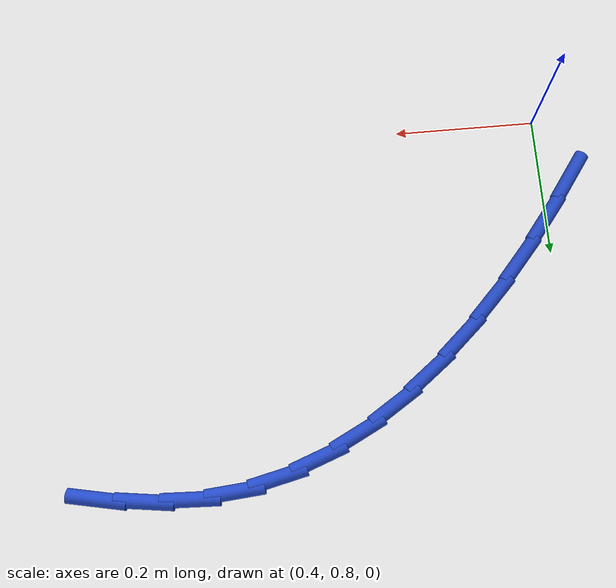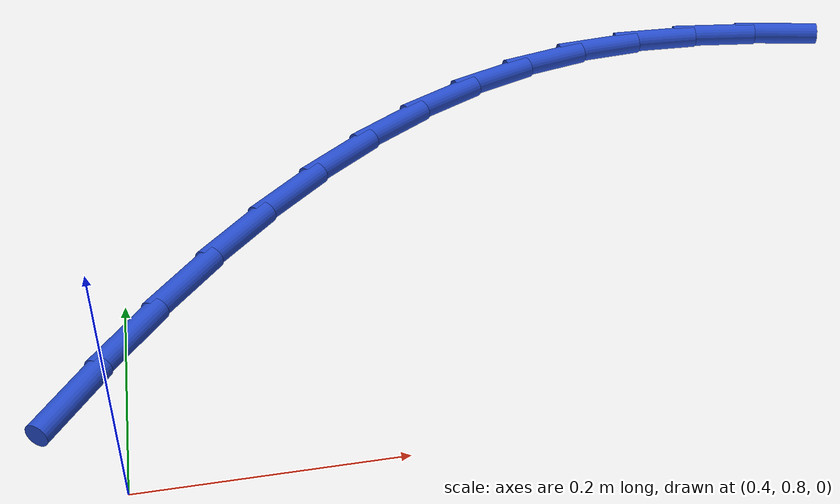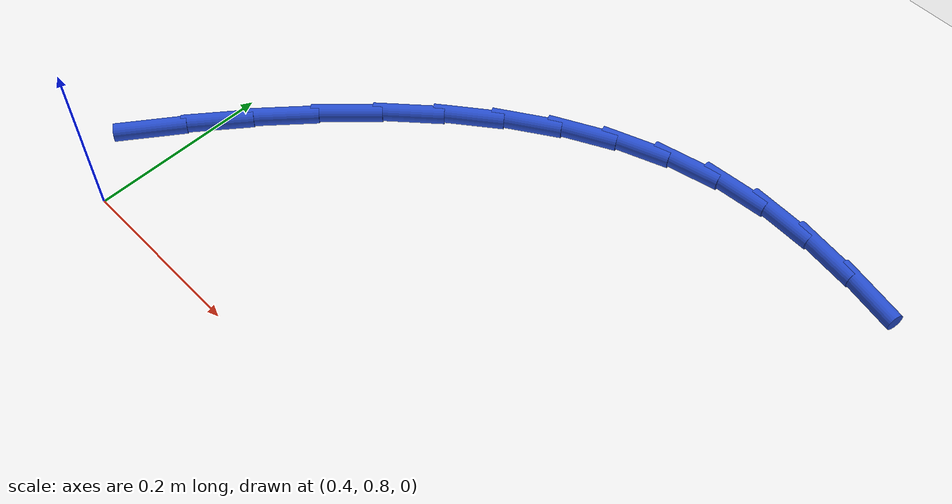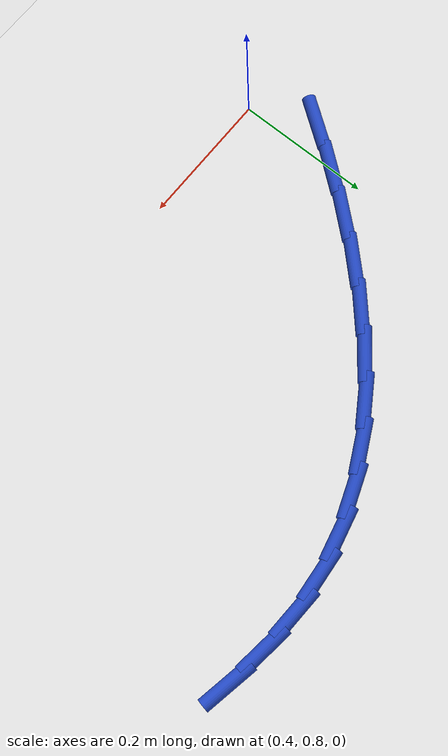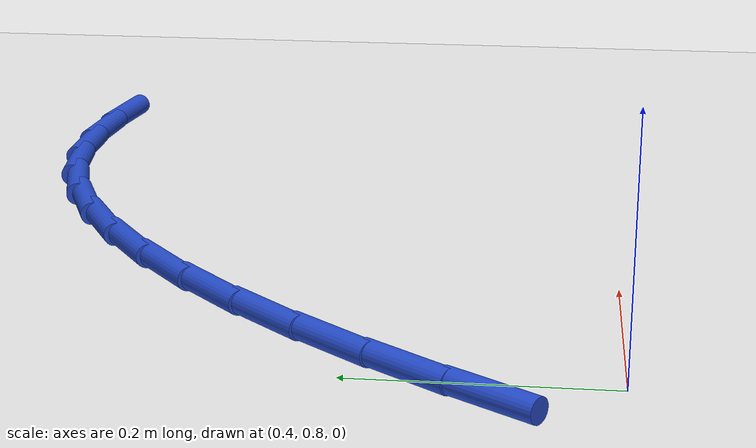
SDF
<sdf version="1.6">
 <world name="default">
  <model name="ground_plane">
   <static>1</static>
   <link name="link">
    <collision name="collision">
     <geometry><plane><normal>0 0 1</normal><size>100 100</size></plane></geometry>
     <surface><friction><ode><mu>100</mu><mu2>50</mu2></ode></friction></surface>
    </collision>
    <visual name="visual">
     <cast_shadows>0</cast_shadows>
     <geometry><plane><normal>0 0 1</normal><size>100 100</size></plane></geometry>
     <material>
      <script><uri>file://media/materials/scripts/gazebo.material</uri><name>Gazebo/WhiteGlow</name></script>
     </material>
    </visual>
   </link>
  </model>
  <model name="line">
   <link name="link_14">
    <pose>0.35985096319807613 0.8921963332581762 0.01 0 1.57 0.9504853440014803</pose>
    <collision name="collision">
     <geometry><cylinder><radius>0.01</radius><length>0.08</length></cylinder></geometry>
    </collision>
    <visual name="visual">
     <material>
      <script><name>Gazebo/Blue</name><uri>file://media/materials/scripts/gazebo.material</uri></script>
     </material>
     <geometry><cylinder><radius>0.01</radius><length>0.08</length></cylinder></geometry>
    </visual>
   </link>
   <link name="link_15">
    <pose>0.40261313906871543 0.9520555961243801 0.01 0 1.57 0.9079422328430593</pose>
    <collision name="collision">
     <geometry><cylinder><radius>0.01</radius><length>0.08</length></cylinder></geometry>
    </collision>
    <visual name="visual">
     <material>
      <script><name>Gazebo/Blue</name><uri>file://media/materials/scripts/gazebo.material</uri></script>
     </material>
     <geometry><cylinder><radius>0.01</radius><length>0.08</length></cylinder></geometry>
    </visual>
   </link>
   <link name="link_16">
    <pose>0.4471265668395863 1.0090737781252728 0.01 0 1.57 0.8590297026982346</pose>
    <collision name="collision">
     <geometry><cylinder><radius>0.01</radius><length>0.08</length></cylinder></geometry>
    </collision>
    <visual name="visual">
     <material>
      <script><name>Gazebo/Blue</name><uri>file://media/materials/scripts/gazebo.material</uri></script>
     </material>
     <geometry><cylinder><radius>0.01</radius><length>0.08</length></cylinder></geometry>
    </visual>
   </link>
   <link name="link_17">
    <pose>0.4933525874136506 1.0626626325225135 0.01 0 1.57 0.8025433449179624</pose>
    <collision name="collision">
     <geometry><cylinder><radius>0.01</radius><length>0.08</length></cylinder></geometry>
    </collision>
    <visual name="visual">
     <material>
      <script><name>Gazebo/Blue</name><uri>file://media/materials/scripts/gazebo.material</uri></script>
     </material>
     <geometry><cylinder><radius>0.01</radius><length>0.08</length></cylinder></geometry>
    </visual>
   </link>
   <link name="link_18">
    <pose>0.5412525416938702 1.1122339125777618 0.01 0 1.57 0.7370788016639935</pose>
    <collision name="collision">
     <geometry><cylinder><radius>0.01</radius><length>0.08</length></cylinder></geometry>
    </collision>
    <visual name="visual">
     <material>
      <script><name>Gazebo/Blue</name><uri>file://media/materials/scripts/gazebo.material</uri></script>
     </material>
     <geometry><cylinder><radius>0.01</radius><length>0.08</length></cylinder></geometry>
    </visual>
   </link>
   <link name="link_19">
    <pose>0.5907877705832068 1.1571993715526772 0.01 0 1.57 0.6610697190253386</pose>
    <collision name="collision">
     <geometry><cylinder><radius>0.01</radius><length>0.08</length></cylinder></geometry>
    </collision>
    <visual name="visual">
     <material>
      <script><name>Gazebo/Blue</name><uri>file://media/materials/scripts/gazebo.material</uri></script>
     </material>
     <geometry><cylinder><radius>0.01</radius><length>0.08</length></cylinder></geometry>
    </visual>
   </link>
   <link name="link_20">
    <pose>0.6419196149846222 1.1969707627089188 0.01 0 1.57 0.5729079361753464</pose>
    <collision name="collision">
     <geometry><cylinder><radius>0.01</radius><length>0.08</length></cylinder></geometry>
    </collision>
    <visual name="visual">
     <material>
      <script><name>Gazebo/Blue</name><uri>file://media/materials/scripts/gazebo.material</uri></script>
     </material>
     <geometry><cylinder><radius>0.01</radius><length>0.08</length></cylinder></geometry>
    </visual>
   </link>
   <link name="link_21">
    <pose>0.6946094158010784 1.2309598393081467 0.01 0 1.57 0.4712037524708896</pose>
    <collision name="collision">
     <geometry><cylinder><radius>0.01</radius><length>0.08</length></cylinder></geometry>
    </collision>
    <visual name="visual">
     <material>
      <script><name>Gazebo/Blue</name><uri>file://media/materials/scripts/gazebo.material</uri></script>
     </material>
     <geometry><cylinder><radius>0.01</radius><length>0.08</length></cylinder></geometry>
    </visual>
   </link>
   <link name="link_22">
    <pose>0.7488185139355374 1.2585783546120208 0.01 0 1.57 0.35524051458873535</pose>
    <collision name="collision">
     <geometry><cylinder><radius>0.01</radius><length>0.08</length></cylinder></geometry>
    </collision>
    <visual name="visual">
     <material>
      <script><name>Gazebo/Blue</name><uri>file://media/materials/scripts/gazebo.material</uri></script>
     </material>
     <geometry><cylinder><radius>0.01</radius><length>0.08</length></cylinder></geometry>
    </visual>
   </link>
   <link name="link_23">
    <pose>0.8045082502909611 1.2792380618821992 0.01 0 1.57 0.22560881772977606</pose>
    <collision name="collision">
     <geometry><cylinder><radius>0.01</radius><length>0.08</length></cylinder></geometry>
    </collision>
    <visual name="visual">
     <material>
      <script><name>Gazebo/Blue</name><uri>file://media/materials/scripts/gazebo.material</uri></script>
     </material>
     <geometry><cylinder><radius>0.01</radius><length>0.08</length></cylinder></geometry>
    </visual>
   </link>
   <link name="link_24">
    <pose>0.8616399657703107 1.2923507143803423 0.01 0 1.57 0.08621217427724805</pose>
    <collision name="collision">
     <geometry><cylinder><radius>0.01</radius><length>0.08</length></cylinder></geometry>
    </collision>
    <visual name="visual">
     <material>
      <script><name>Gazebo/Blue</name><uri>file://media/materials/scripts/gazebo.material</uri></script>
     </material>
     <geometry><cylinder><radius>0.01</radius><length>0.08</length></cylinder></geometry>
    </visual>
   </link>
   <link name="link_25">
    <pose>0.9201789730254978 1.2974100302118639 0.01 0 1.57 -0.03912390864750314</pose>
    <collision name="collision">
     <geometry><cylinder><radius>0.01</radius><length>0.08</length></cylinder></geometry>
    </collision>
    <visual name="visual">
     <material>
      <script><name>Gazebo/Blue</name><uri>file://media/materials/scripts/gazebo.material</uri></script>
     </material>
     <geometry><cylinder><radius>0.01</radius><length>0.08</length></cylinder></geometry>
    </visual>
   </link>
   <link name="link_26">
    <pose>0.9801464525521231 1.295062670212961 0.01 0 1.57 -0.13353513887415558</pose>
    <collision name="collision">
     <geometry><cylinder><radius>0.01</radius><length>0.08</length></cylinder></geometry>
    </collision>
    <visual name="visual">
     <material>
      <script><name>Gazebo/Blue</name><uri>file://media/materials/scripts/gazebo.material</uri></script>
     </material>
     <geometry><cylinder><radius>0.01</radius><length>0.08</length></cylinder></geometry>
    </visual>
   </link>
   <link name="link_27">
    <pose>1.0416048404100238 1.286806684851991 0.01 0 1.57 -0.198068563826027</pose>
    <collision name="collision">
     <geometry><cylinder><radius>0.01</radius><length>0.08</length></cylinder></geometry>
    </collision>
    <visual name="visual">
     <material>
      <script><name>Gazebo/Blue</name><uri>file://media/materials/scripts/gazebo.material</uri></script>
     </material>
     <geometry><cylinder><radius>0.01</radius><length>0.08</length></cylinder></geometry>
    </visual>
   </link>
  </model>
 </world>
</sdf>
